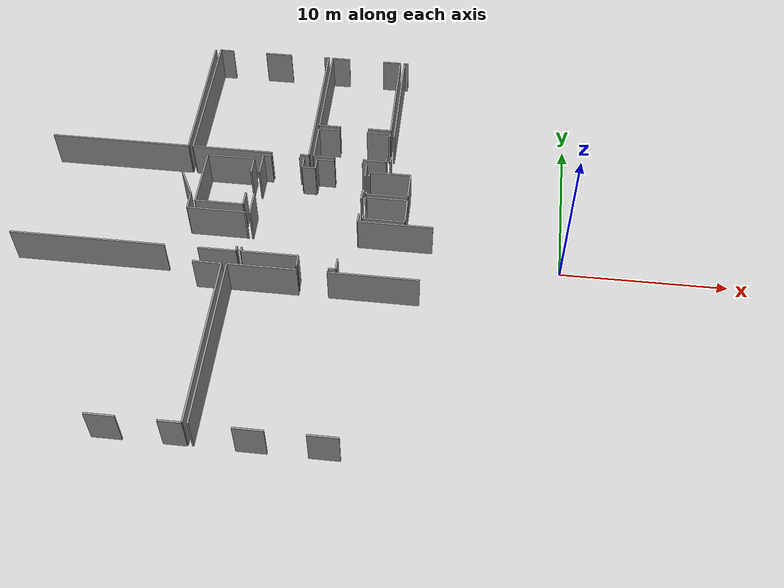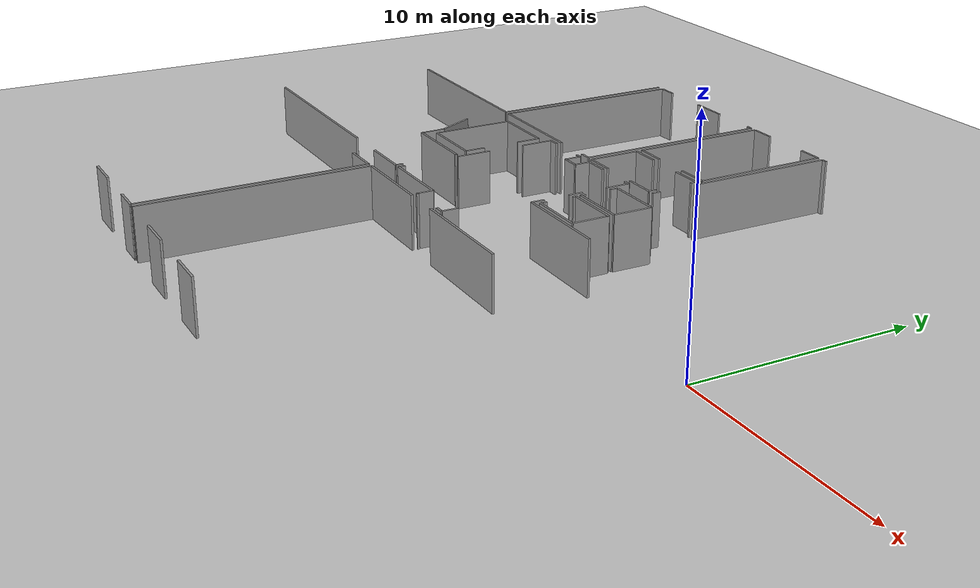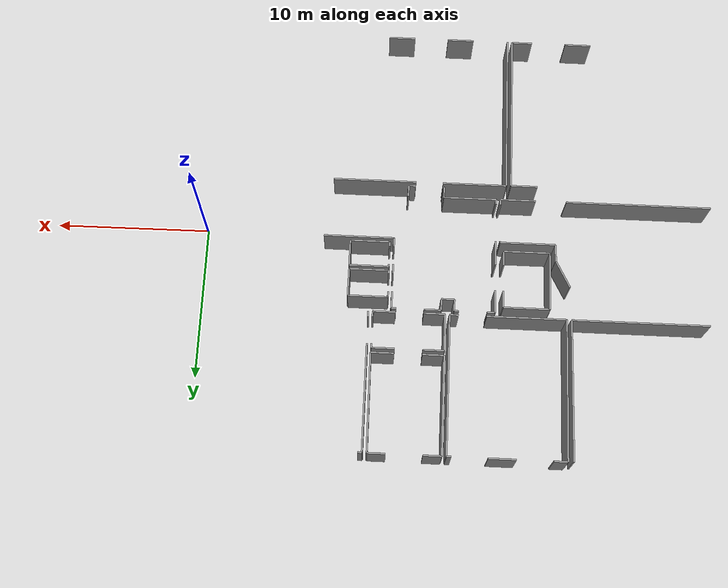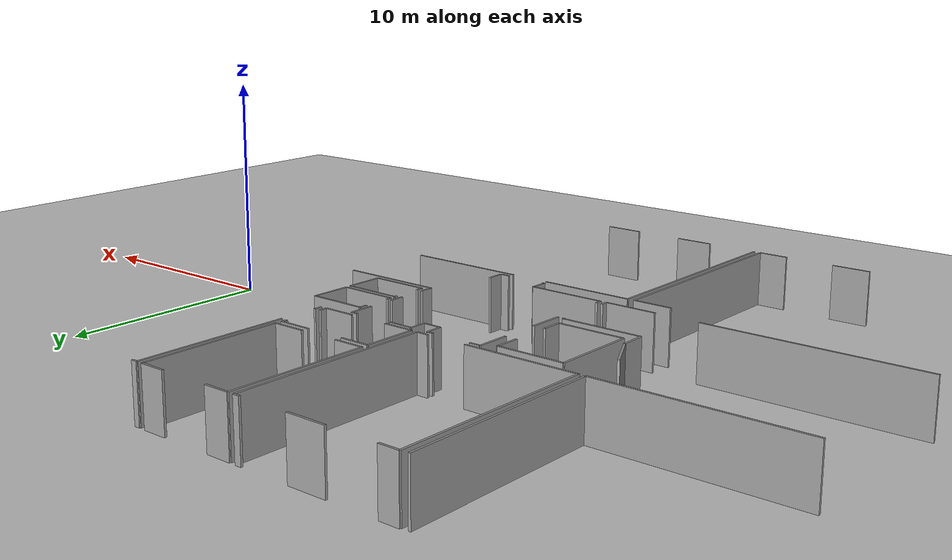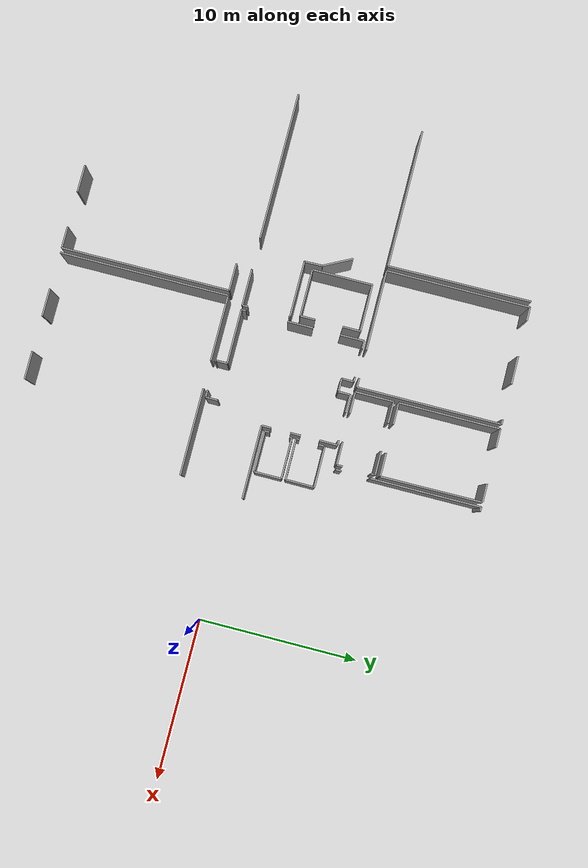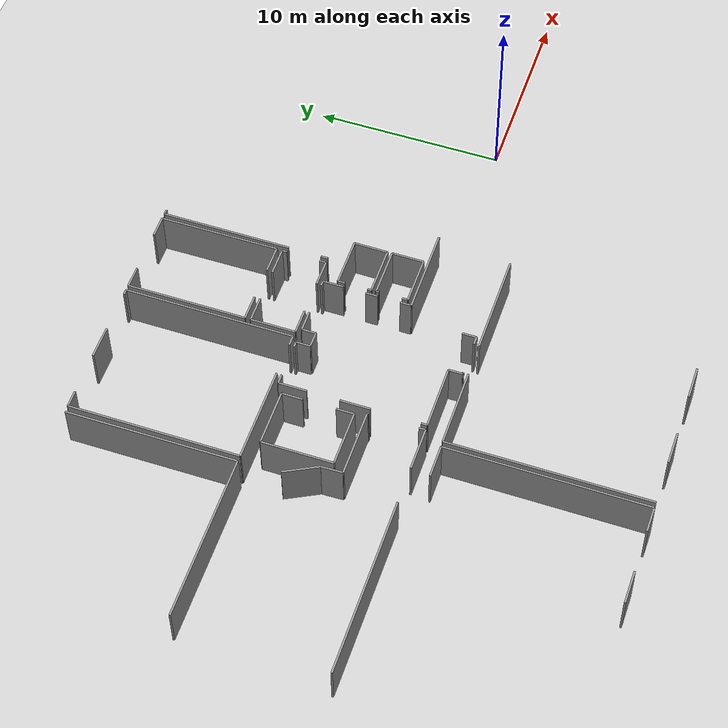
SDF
<sdf version="1.6">
 <world name="default">
  <model name="ground_plane">
   <static>1</static>
   <link name="link">
    <collision name="collision">
     <geometry><plane><normal>0 0 1</normal><size>100 100</size></plane></geometry>
     <surface><friction><ode><mu>100</mu><mu2>50</mu2></ode></friction></surface>
    </collision>
    <visual name="visual">
     <cast_shadows>0</cast_shadows>
     <geometry><plane><normal>0 0 1</normal><size>100 100</size></plane></geometry>
     <material>
      <script><uri>file://media/materials/scripts/gazebo.material</uri><name>Gazebo/Grey</name></script>
     </material>
    </visual>
   </link>
  </model>
  <model name="0510032266_A_40_1_103">
   <static>1</static>
   <link name="Wall_37">
    <collision name="Wall_37_Collision">
     <geometry><box><size>8.75459433381 0.1 2.5</size></box></geometry>
     <pose>4.37729716691 0 1.25 0 0 0</pose>
    </collision>
    <visual name="Wall_37_Visual">
     <pose>4.37729716691 0 1.25 0 0 0</pose>
     <geometry><box><size>8.75459433381 0.1 2.5</size></box></geometry>
     <material>
      <script><uri>file://media/materials/scripts/gazebo.material</uri><name>Gazebo/Grey</name></script>
      <ambient>1 1 1 1</ambient>
     </material>
    </visual>
    <pose>23.7045406936 -9.0210815649 0 0 0 3.14159265359</pose>
   </link>
   <link name="Wall_44">
    <collision name="Wall_44_Collision">
     <geometry><box><size>8.99659842977 0.1 2.5</size></box></geometry>
     <pose>4.49829921489 0 1.25 0 0 0</pose>
    </collision>
    <visual name="Wall_44_Visual">
     <pose>4.49829921489 0 1.25 0 0 0</pose>
     <geometry><box><size>8.99659842977 0.1 2.5</size></box></geometry>
     <material>
      <script><uri>file://media/materials/scripts/gazebo.material</uri><name>Gazebo/Grey</name></script>
      <ambient>1 1 1 1</ambient>
     </material>
    </visual>
    <pose>23.6531222426 -0.0246300728111 0 0 0 -1.56508097434</pose>
   </link>
   <link name="Wall_53">
    <collision name="Wall_53_Collision">
     <geometry><box><size>2.30392748094 0.1 2.5</size></box></geometry>
     <pose>1.15196374047 0 1.25 0 0 0</pose>
    </collision>
    <visual name="Wall_53_Visual">
     <pose>1.15196374047 0 1.25 0 0 0</pose>
     <geometry><box><size>2.30392748094 0.1 2.5</size></box></geometry>
     <material>
      <script><uri>file://media/materials/scripts/gazebo.material</uri><name>Gazebo/Grey</name></script>
      <ambient>1 1 1 1</ambient>
     </material>
    </visual>
    <pose>28.2952561718 -17.0398207337 0 0 0 3.14159265359</pose>
   </link>
   <link name="Wall_54">
    <collision name="Wall_54_Collision">
     <geometry><box><size>9.41427401591 0.1 2.5</size></box></geometry>
     <pose>4.70713700795 0 1.25 0 0 0</pose>
    </collision>
    <visual name="Wall_54_Visual">
     <pose>4.70713700795 0 1.25 0 0 0</pose>
     <geometry><box><size>9.41427401591 0.1 2.5</size></box></geometry>
     <material>
      <script><uri>file://media/materials/scripts/gazebo.material</uri><name>Gazebo/Grey</name></script>
      <ambient>1 1 1 1</ambient>
     </material>
    </visual>
    <pose>23.9917222642 -17.0398207337 0 0 0 3.14159265359</pose>
   </link>
   <link name="Wall_65">
    <collision name="Wall_65_Collision">
     <geometry><box><size>1.92346495425 0.1 2.5</size></box></geometry>
     <pose>0.961732477126 0 1.25 0 0 0</pose>
    </collision>
    <visual name="Wall_65_Visual">
     <pose>0.961732477126 0 1.25 0 0 0</pose>
     <geometry><box><size>1.92346495425 0.1 2.5</size></box></geometry>
     <material>
      <script><uri>file://media/materials/scripts/gazebo.material</uri><name>Gazebo/Grey</name></script>
      <ambient>1 1 1 1</ambient>
     </material>
    </visual>
    <pose>23.8025531483 -11.2031282732 0 0 0 -1.09377642642</pose>
   </link>
   <link name="Wall_66">
    <collision name="Wall_66_Collision">
     <geometry><box><size>1.13322291596 0.1 2.5</size></box></geometry>
     <pose>0.566611457982 0 1.25 0 0 0</pose>
    </collision>
    <visual name="Wall_66_Visual">
     <pose>0.566611457982 0 1.25 0 0 0</pose>
     <geometry><box><size>1.13322291596 0.1 2.5</size></box></geometry>
     <material>
      <script><uri>file://media/materials/scripts/gazebo.material</uri><name>Gazebo/Grey</name></script>
      <ambient>1 1 1 1</ambient>
     </material>
    </visual>
    <pose>24.6856809136 -12.9118713142 0 0 0 -1.5453619383</pose>
   </link>
   <link name="Wall_67">
    <collision name="Wall_67_Collision">
     <geometry><box><size>3.56844049743 0.1 2.5</size></box></geometry>
     <pose>1.78422024871 0 1.25 0 0 0</pose>
    </collision>
    <visual name="Wall_67_Visual">
     <pose>1.78422024871 0 1.25 0 0 0</pose>
     <geometry><box><size>3.56844049743 0.1 2.5</size></box></geometry>
     <material>
      <script><uri>file://media/materials/scripts/gazebo.material</uri><name>Gazebo/Grey</name></script>
      <ambient>1 1 1 1</ambient>
     </material>
    </visual>
    <pose>24.714500638 -14.0447277044 0 0 0 0.0</pose>
   </link>
   <link name="Wall_68">
    <collision name="Wall_68_Collision">
     <geometry><box><size>0.0813808075871 0.1 2.5</size></box></geometry>
     <pose>0.0406904037935 0 1.25 0 0 0</pose>
    </collision>
    <visual name="Wall_68_Visual">
     <pose>0.0406904037935 0 1.25 0 0 0</pose>
     <geometry><box><size>0.0813808075871 0.1 2.5</size></box></geometry>
     <material>
      <script><uri>file://media/materials/scripts/gazebo.material</uri><name>Gazebo/Grey</name></script>
      <ambient>1 1 1 1</ambient>
     </material>
    </visual>
    <pose>28.2829411354 -14.0447277044 0 0 0 -1.57079632679</pose>
   </link>
   <link name="Wall_69">
    <collision name="Wall_69_Collision">
     <geometry><box><size>0.346563403866 0.1 2.5</size></box></geometry>
     <pose>0.173281701933 0 1.25 0 0 0</pose>
    </collision>
    <visual name="Wall_69_Visual">
     <pose>0.173281701933 0 1.25 0 0 0</pose>
     <geometry><box><size>0.346563403866 0.1 2.5</size></box></geometry>
     <material>
      <script><uri>file://media/materials/scripts/gazebo.material</uri><name>Gazebo/Grey</name></script>
      <ambient>1 1 1 1</ambient>
     </material>
    </visual>
    <pose>28.2829411354 -16.6934762047 0 0 0 -1.53525411583</pose>
   </link>
   <link name="Wall_79">
    <collision name="Wall_79_Collision">
     <geometry><box><size>1.34576686493 0.1 2.5</size></box></geometry>
     <pose>0.672883432467 0 1.25 0 0 0</pose>
    </collision>
    <visual name="Wall_79_Visual">
     <pose>0.672883432467 0 1.25 0 0 0</pose>
     <geometry><box><size>1.34576686493 0.1 2.5</size></box></geometry>
     <material>
      <script><uri>file://media/materials/scripts/gazebo.material</uri><name>Gazebo/Grey</name></script>
      <ambient>1 1 1 1</ambient>
     </material>
    </visual>
    <pose>27.6094229072 -28.6654690188 0 0 0 3.14159265359</pose>
   </link>
   <link name="Wall_80">
    <collision name="Wall_80_Collision">
     <geometry><box><size>1.73756276542 0.1 2.5</size></box></geometry>
     <pose>0.868781382712 0 1.25 0 0 0</pose>
    </collision>
    <visual name="Wall_80_Visual">
     <pose>0.868781382712 0 1.25 0 0 0</pose>
     <geometry><box><size>1.73756276542 0.1 2.5</size></box></geometry>
     <material>
      <script><uri>file://media/materials/scripts/gazebo.material</uri><name>Gazebo/Grey</name></script>
      <ambient>1 1 1 1</ambient>
     </material>
    </visual>
    <pose>23.9945153652 -28.6654690188 0 0 0 3.14159265359</pose>
   </link>
   <link name="Wall_84">
    <collision name="Wall_84_Collision">
     <geometry><box><size>1.73261135903 0.1 2.5</size></box></geometry>
     <pose>0.866305679517 0 1.25 0 0 0</pose>
    </collision>
    <visual name="Wall_84_Visual">
     <pose>0.866305679517 0 1.25 0 0 0</pose>
     <geometry><box><size>1.73261135903 0.1 2.5</size></box></geometry>
     <material>
      <script><uri>file://media/materials/scripts/gazebo.material</uri><name>Gazebo/Grey</name></script>
      <ambient>1 1 1 1</ambient>
     </material>
    </visual>
    <pose>25.8817629546 -18.0473684545 0 0 0 0.0</pose>
   </link>
   <link name="Wall_85">
    <collision name="Wall_85_Collision">
     <geometry><box><size>10.6181017188 0.1 2.5</size></box></geometry>
     <pose>5.3090508594 0 1.25 0 0 0</pose>
    </collision>
    <visual name="Wall_85_Visual">
     <pose>5.3090508594 0 1.25 0 0 0</pose>
     <geometry><box><size>10.6181017188 0.1 2.5</size></box></geometry>
     <material>
      <script><uri>file://media/materials/scripts/gazebo.material</uri><name>Gazebo/Grey</name></script>
      <ambient>1 1 1 1</ambient>
     </material>
    </visual>
    <pose>27.6143743136 -18.0473684545 0 0 0 -1.57126264429</pose>
   </link>
   <link name="Wall_86">
    <collision name="Wall_86_Collision">
     <geometry><box><size>0.308891583244 0.1 2.5</size></box></geometry>
     <pose>0.154445791622 0 1.25 0 0 0</pose>
    </collision>
    <visual name="Wall_86_Visual">
     <pose>0.154445791622 0 1.25 0 0 0</pose>
     <geometry><box><size>0.308891583244 0.1 2.5</size></box></geometry>
     <material>
      <script><uri>file://media/materials/scripts/gazebo.material</uri><name>Gazebo/Grey</name></script>
      <ambient>1 1 1 1</ambient>
     </material>
    </visual>
    <pose>28.5682183189 -17.0290292069 0 0 0 1.57079632679</pose>
   </link>
   <link name="Wall_87">
    <collision name="Wall_87_Collision">
     <geometry><box><size>1.59968514134 0.1 2.5</size></box></geometry>
     <pose>0.799842570669 0 1.25 0 0 0</pose>
    </collision>
    <visual name="Wall_87_Visual">
     <pose>0.799842570669 0 1.25 0 0 0</pose>
     <geometry><box><size>1.59968514134 0.1 2.5</size></box></geometry>
     <material>
      <script><uri>file://media/materials/scripts/gazebo.material</uri><name>Gazebo/Grey</name></script>
      <ambient>1 1 1 1</ambient>
     </material>
    </visual>
    <pose>28.5682183189 -14.1159517809 0 0 0 1.57079632679</pose>
   </link>
   <link name="Wall_88">
    <collision name="Wall_88_Collision">
     <geometry><box><size>1.50154572751 0.1 2.5</size></box></geometry>
     <pose>0.750772863754 0 1.25 0 0 0</pose>
    </collision>
    <visual name="Wall_88_Visual">
     <pose>0.750772863754 0 1.25 0 0 0</pose>
     <geometry><box><size>1.50154572751 0.1 2.5</size></box></geometry>
     <material>
      <script><uri>file://media/materials/scripts/gazebo.material</uri><name>Gazebo/Grey</name></script>
      <ambient>1 1 1 1</ambient>
     </material>
    </visual>
    <pose>28.5682183189 -10.7985094997 0 0 0 1.57079632679</pose>
   </link>
   <link name="Wall_89">
    <collision name="Wall_89_Collision">
     <geometry><box><size>0.501742514172 0.1 2.5</size></box></geometry>
     <pose>0.250871257086 0 1.25 0 0 0</pose>
    </collision>
    <visual name="Wall_89_Visual">
     <pose>0.250871257086 0 1.25 0 0 0</pose>
     <geometry><box><size>0.501742514172 0.1 2.5</size></box></geometry>
     <material>
      <script><uri>file://media/materials/scripts/gazebo.material</uri><name>Gazebo/Grey</name></script>
      <ambient>1 1 1 1</ambient>
     </material>
    </visual>
    <pose>28.5682183189 -9.29696377221 0 0 0 0.0</pose>
   </link>
   <link name="Wall_90">
    <collision name="Wall_90_Collision">
     <geometry><box><size>0.292006017863 0.1 2.5</size></box></geometry>
     <pose>0.146003008932 0 1.25 0 0 0</pose>
    </collision>
    <visual name="Wall_90_Visual">
     <pose>0.146003008932 0 1.25 0 0 0</pose>
     <geometry><box><size>0.292006017863 0.1 2.5</size></box></geometry>
     <material>
      <script><uri>file://media/materials/scripts/gazebo.material</uri><name>Gazebo/Grey</name></script>
      <ambient>1 1 1 1</ambient>
     </material>
    </visual>
    <pose>30.8595768452 -9.29696377221 0 0 0 0.0</pose>
   </link>
   <link name="Wall_91">
    <collision name="Wall_91_Collision">
     <geometry><box><size>0.756295586266 0.1 2.5</size></box></geometry>
     <pose>0.378147793133 0 1.25 0 0 0</pose>
    </collision>
    <visual name="Wall_91_Visual">
     <pose>0.378147793133 0 1.25 0 0 0</pose>
     <geometry><box><size>0.756295586266 0.1 2.5</size></box></geometry>
     <material>
      <script><uri>file://media/materials/scripts/gazebo.material</uri><name>Gazebo/Grey</name></script>
      <ambient>1 1 1 1</ambient>
     </material>
    </visual>
    <pose>31.1515828631 -9.29696377221 0 0 0 -1.57079632679</pose>
   </link>
   <link name="Wall_92">
    <collision name="Wall_92_Collision">
     <geometry><box><size>0.825234398309 0.1 2.5</size></box></geometry>
     <pose>0.412617199154 0 1.25 0 0 0</pose>
    </collision>
    <visual name="Wall_92_Visual">
     <pose>0.412617199154 0 1.25 0 0 0</pose>
     <geometry><box><size>0.825234398309 0.1 2.5</size></box></geometry>
     <material>
      <script><uri>file://media/materials/scripts/gazebo.material</uri><name>Gazebo/Grey</name></script>
      <ambient>1 1 1 1</ambient>
     </material>
    </visual>
    <pose>31.1515828631 -10.0532593585 0 0 0 0.0</pose>
   </link>
   <link name="Wall_93">
    <collision name="Wall_93_Collision">
     <geometry><box><size>0.749058915388 0.1 2.5</size></box></geometry>
     <pose>0.374529457694 0 1.25 0 0 0</pose>
    </collision>
    <visual name="Wall_93_Visual">
     <pose>0.374529457694 0 1.25 0 0 0</pose>
     <geometry><box><size>0.749058915388 0.1 2.5</size></box></geometry>
     <material>
      <script><uri>file://media/materials/scripts/gazebo.material</uri><name>Gazebo/Grey</name></script>
      <ambient>1 1 1 1</ambient>
     </material>
    </visual>
    <pose>31.9768172614 -10.0532593585 0 0 0 1.57079632679</pose>
   </link>
   <link name="Wall_94">
    <collision name="Wall_94_Collision">
     <geometry><box><size>1.10454450235 0.1 2.5</size></box></geometry>
     <pose>0.552272251176 0 1.25 0 0 0</pose>
    </collision>
    <visual name="Wall_94_Visual">
     <pose>0.552272251176 0 1.25 0 0 0</pose>
     <geometry><box><size>1.10454450235 0.1 2.5</size></box></geometry>
     <material>
      <script><uri>file://media/materials/scripts/gazebo.material</uri><name>Gazebo/Grey</name></script>
      <ambient>1 1 1 1</ambient>
     </material>
    </visual>
    <pose>31.9768172614 -9.30420044309 0 0 0 0.0</pose>
   </link>
   <link name="Wall_95">
    <collision name="Wall_95_Collision">
     <geometry><box><size>0.297592219944 0.1 2.5</size></box></geometry>
     <pose>0.148796109972 0 1.25 0 0 0</pose>
    </collision>
    <visual name="Wall_95_Visual">
     <pose>0.148796109972 0 1.25 0 0 0</pose>
     <geometry><box><size>0.297592219944 0.1 2.5</size></box></geometry>
     <material>
      <script><uri>file://media/materials/scripts/gazebo.material</uri><name>Gazebo/Grey</name></script>
      <ambient>1 1 1 1</ambient>
     </material>
    </visual>
    <pose>34.8424119697 -9.30420044309 0 0 0 0.0</pose>
   </link>
   <link name="Wall_96">
    <collision name="Wall_96_Collision">
     <geometry><box><size>1.11165421409 0.1 2.5</size></box></geometry>
     <pose>0.555827107046 0 1.25 0 0 0</pose>
    </collision>
    <visual name="Wall_96_Visual">
     <pose>0.555827107046 0 1.25 0 0 0</pose>
     <geometry><box><size>1.11165421409 0.1 2.5</size></box></geometry>
     <material>
      <script><uri>file://media/materials/scripts/gazebo.material</uri><name>Gazebo/Grey</name></script>
      <ambient>1 1 1 1</ambient>
     </material>
    </visual>
    <pose>35.1400041897 -9.30420044309 0 0 0 -1.57079632679</pose>
   </link>
   <link name="Wall_97">
    <collision name="Wall_97_Collision">
     <geometry><box><size>0.640381893088 0.1 2.5</size></box></geometry>
     <pose>0.320190946544 0 1.25 0 0 0</pose>
    </collision>
    <visual name="Wall_97_Visual">
     <pose>0.320190946544 0 1.25 0 0 0</pose>
     <geometry><box><size>0.640381893088 0.1 2.5</size></box></geometry>
     <material>
      <script><uri>file://media/materials/scripts/gazebo.material</uri><name>Gazebo/Grey</name></script>
      <ambient>1 1 1 1</ambient>
     </material>
    </visual>
    <pose>35.1400041897 -11.6043191499 0 0 0 -1.57079632679</pose>
   </link>
   <link name="Wall_98">
    <collision name="Wall_98_Collision">
     <geometry><box><size>0.595184439888 0.1 2.5</size></box></geometry>
     <pose>0.297592219944 0 1.25 0 0 0</pose>
    </collision>
    <visual name="Wall_98_Visual">
     <pose>0.297592219944 0 1.25 0 0 0</pose>
     <geometry><box><size>0.595184439888 0.1 2.5</size></box></geometry>
     <material>
      <script><uri>file://media/materials/scripts/gazebo.material</uri><name>Gazebo/Grey</name></script>
      <ambient>1 1 1 1</ambient>
     </material>
    </visual>
    <pose>35.1400041897 -13.4510667742 0 0 0 -1.57079632679</pose>
   </link>
   <link name="Wall_99">
    <collision name="Wall_99_Collision">
     <geometry><box><size>4.56126095816 0.1 2.5</size></box></geometry>
     <pose>2.28063047908 0 1.25 0 0 0</pose>
    </collision>
    <visual name="Wall_99_Visual">
     <pose>2.28063047908 0 1.25 0 0 0</pose>
     <geometry><box><size>4.56126095816 0.1 2.5</size></box></geometry>
     <material>
      <script><uri>file://media/materials/scripts/gazebo.material</uri><name>Gazebo/Grey</name></script>
      <ambient>1 1 1 1</ambient>
     </material>
    </visual>
    <pose>35.1400041897 -14.046251214 0 0 0 0.0</pose>
   </link>
   <link name="Wall_134">
    <collision name="Wall_134_Collision">
     <geometry><box><size>0.759088687306 0.1 2.5</size></box></geometry>
     <pose>0.379544343653 0 1.25 0 0 0</pose>
    </collision>
    <visual name="Wall_134_Visual">
     <pose>0.379544343653 0 1.25 0 0 0</pose>
     <geometry><box><size>0.759088687306 0.1 2.5</size></box></geometry>
     <material>
      <script><uri>file://media/materials/scripts/gazebo.material</uri><name>Gazebo/Grey</name></script>
      <ambient>1 1 1 1</ambient>
     </material>
    </visual>
    <pose>34.3189594429 -17.0012251557 0 0 0 -1.57079632679</pose>
   </link>
   <link name="Wall_135">
    <collision name="Wall_135_Collision">
     <geometry><box><size>0.441817800941 0.1 2.5</size></box></geometry>
     <pose>0.22090890047 0 1.25 0 0 0</pose>
    </collision>
    <visual name="Wall_135_Visual">
     <pose>0.22090890047 0 1.25 0 0 0</pose>
     <geometry><box><size>0.441817800941 0.1 2.5</size></box></geometry>
     <material>
      <script><uri>file://media/materials/scripts/gazebo.material</uri><name>Gazebo/Grey</name></script>
      <ambient>1 1 1 1</ambient>
     </material>
    </visual>
    <pose>34.3189594429 -17.760313843 0 0 0 3.14159265359</pose>
   </link>
   <link name="Wall_136">
    <collision name="Wall_136_Collision">
     <geometry><box><size>0.0834121537983 0.1 2.5</size></box></geometry>
     <pose>0.0417060768992 0 1.25 0 0 0</pose>
    </collision>
    <visual name="Wall_136_Visual">
     <pose>0.0417060768992 0 1.25 0 0 0</pose>
     <geometry><box><size>0.0834121537983 0.1 2.5</size></box></geometry>
     <material>
      <script><uri>file://media/materials/scripts/gazebo.material</uri><name>Gazebo/Grey</name></script>
      <ambient>1 1 1 1</ambient>
     </material>
    </visual>
    <pose>32.0743218795 -17.760313843 0 0 0 3.14159265359</pose>
   </link>
   <link name="Wall_137">
    <collision name="Wall_137_Collision">
     <geometry><box><size>0.739663939161 0.1 2.5</size></box></geometry>
     <pose>0.369831969581 0 1.25 0 0 0</pose>
    </collision>
    <visual name="Wall_137_Visual">
     <pose>0.369831969581 0 1.25 0 0 0</pose>
     <geometry><box><size>0.739663939161 0.1 2.5</size></box></geometry>
     <material>
      <script><uri>file://media/materials/scripts/gazebo.material</uri><name>Gazebo/Grey</name></script>
      <ambient>1 1 1 1</ambient>
     </material>
    </visual>
    <pose>31.9909097257 -17.760313843 0 0 0 1.57079632679</pose>
   </link>
   <link name="Wall_138">
    <collision name="Wall_138_Collision">
     <geometry><box><size>3.4227016637 0.1 2.5</size></box></geometry>
     <pose>1.71135083185 0 1.25 0 0 0</pose>
    </collision>
    <visual name="Wall_138_Visual">
     <pose>1.71135083185 0 1.25 0 0 0</pose>
     <geometry><box><size>3.4227016637 0.1 2.5</size></box></geometry>
     <material>
      <script><uri>file://media/materials/scripts/gazebo.material</uri><name>Gazebo/Grey</name></script>
      <ambient>1 1 1 1</ambient>
     </material>
    </visual>
    <pose>31.9909097257 -17.0206499038 0 0 0 -3.13914449646</pose>
   </link>
   <link name="Wall_139">
    <collision name="Wall_139_Collision">
     <geometry><box><size>2.96640026407 0.1 2.5</size></box></geometry>
     <pose>1.48320013204 0 1.25 0 0 0</pose>
    </collision>
    <visual name="Wall_139_Visual">
     <pose>1.48320013204 0 1.25 0 0 0</pose>
     <geometry><box><size>2.96640026407 0.1 2.5</size></box></geometry>
     <material>
      <script><uri>file://media/materials/scripts/gazebo.material</uri><name>Gazebo/Grey</name></script>
      <ambient>1 1 1 1</ambient>
     </material>
    </visual>
    <pose>28.0456545061 -13.4494163054 0 0 0 3.14159265359</pose>
   </link>
   <link name="Wall_140">
    <collision name="Wall_140_Collision">
     <geometry><box><size>3.7823666453 0.1 2.5</size></box></geometry>
     <pose>1.89118332265 0 1.25 0 0 0</pose>
    </collision>
    <visual name="Wall_140_Visual">
     <pose>1.89118332265 0 1.25 0 0 0</pose>
     <geometry><box><size>3.7823666453 0.1 2.5</size></box></geometry>
     <material>
      <script><uri>file://media/materials/scripts/gazebo.material</uri><name>Gazebo/Grey</name></script>
      <ambient>1 1 1 1</ambient>
     </material>
    </visual>
    <pose>25.079254242 -13.4494163054 0 0 0 1.57079632679</pose>
   </link>
   <link name="Wall_141">
    <collision name="Wall_141_Collision">
     <geometry><box><size>2.96640026407 0.1 2.5</size></box></geometry>
     <pose>1.48320013204 0 1.25 0 0 0</pose>
    </collision>
    <visual name="Wall_141_Visual">
     <pose>1.48320013204 0 1.25 0 0 0</pose>
     <geometry><box><size>2.96640026407 0.1 2.5</size></box></geometry>
     <material>
      <script><uri>file://media/materials/scripts/gazebo.material</uri><name>Gazebo/Grey</name></script>
      <ambient>1 1 1 1</ambient>
     </material>
    </visual>
    <pose>25.079254242 -9.66704966007 0 0 0 0.0</pose>
   </link>
   <link name="Wall_142">
    <collision name="Wall_142_Collision">
     <geometry><box><size>1.1136855603 0.1 2.5</size></box></geometry>
     <pose>0.556842780151 0 1.25 0 0 0</pose>
    </collision>
    <visual name="Wall_142_Visual">
     <pose>0.556842780151 0 1.25 0 0 0</pose>
     <geometry><box><size>1.1136855603 0.1 2.5</size></box></geometry>
     <material>
      <script><uri>file://media/materials/scripts/gazebo.material</uri><name>Gazebo/Grey</name></script>
      <ambient>1 1 1 1</ambient>
     </material>
    </visual>
    <pose>28.0456545061 -9.66704966007 0 0 0 -1.57079632679</pose>
   </link>
   <link name="Wall_143">
    <collision name="Wall_143_Collision">
     <geometry><box><size>0.934800134577 0.1 2.5</size></box></geometry>
     <pose>0.467400067288 0 1.25 0 0 0</pose>
    </collision>
    <visual name="Wall_143_Visual">
     <pose>0.467400067288 0 1.25 0 0 0</pose>
     <geometry><box><size>0.934800134577 0.1 2.5</size></box></geometry>
     <material>
      <script><uri>file://media/materials/scripts/gazebo.material</uri><name>Gazebo/Grey</name></script>
      <ambient>1 1 1 1</ambient>
     </material>
    </visual>
    <pose>28.0456545061 -12.5146161708 0 0 0 -1.57079632679</pose>
   </link>
   <link name="Wall_144">
    <collision name="Wall_144_Collision">
     <geometry><box><size>0.563063777923 0.1 2.5</size></box></geometry>
     <pose>0.281531888962 0 1.25 0 0 0</pose>
    </collision>
    <visual name="Wall_144_Visual">
     <pose>0.281531888962 0 1.25 0 0 0</pose>
     <geometry><box><size>0.563063777923 0.1 2.5</size></box></geometry>
     <material>
      <script><uri>file://media/materials/scripts/gazebo.material</uri><name>Gazebo/Grey</name></script>
      <ambient>1 1 1 1</ambient>
     </material>
    </visual>
    <pose>31.4325434359 -9.03212700992 0 0 0 3.14159265359</pose>
   </link>
   <link name="Wall_145">
    <collision name="Wall_145_Collision">
     <geometry><box><size>5.07836552805 0.1 2.5</size></box></geometry>
     <pose>2.53918276403 0 1.25 0 0 0</pose>
    </collision>
    <visual name="Wall_145_Visual">
     <pose>2.53918276403 0 1.25 0 0 0</pose>
     <geometry><box><size>5.07836552805 0.1 2.5</size></box></geometry>
     <material>
      <script><uri>file://media/materials/scripts/gazebo.material</uri><name>Gazebo/Grey</name></script>
      <ambient>1 1 1 1</ambient>
     </material>
    </visual>
    <pose>29.0825297878 -9.03212700992 0 0 0 3.14159265359</pose>
   </link>
   <link name="Wall_146">
    <collision name="Wall_146_Collision">
     <geometry><box><size>9.02146244231 0.1 2.5</size></box></geometry>
     <pose>4.51073122116 0 1.25 0 0 0</pose>
    </collision>
    <visual name="Wall_146_Visual">
     <pose>4.51073122116 0 1.25 0 0 0</pose>
     <geometry><box><size>9.02146244231 0.1 2.5</size></box></geometry>
     <material>
      <script><uri>file://media/materials/scripts/gazebo.material</uri><name>Gazebo/Grey</name></script>
      <ambient>1 1 1 1</ambient>
     </material>
    </visual>
    <pose>24.0041642597 -9.03212700992 0 0 0 1.57079632679</pose>
   </link>
   <link name="Wall_147">
    <collision name="Wall_147_Collision">
     <geometry><box><size>0.878176358939 0.1 2.5</size></box></geometry>
     <pose>0.439088179469 0 1.25 0 0 0</pose>
    </collision>
    <visual name="Wall_147_Visual">
     <pose>0.439088179469 0 1.25 0 0 0</pose>
     <geometry><box><size>0.878176358939 0.1 2.5</size></box></geometry>
     <material>
      <script><uri>file://media/materials/scripts/gazebo.material</uri><name>Gazebo/Grey</name></script>
      <ambient>1 1 1 1</ambient>
     </material>
    </visual>
    <pose>24.0041642597 -0.0106645676089 0 0 0 0.0</pose>
   </link>
   <link name="Wall_148">
    <collision name="Wall_148_Collision">
     <geometry><box><size>1.7421332944 0.1 2.5</size></box></geometry>
     <pose>0.8710666472 0 1.25 0 0 0</pose>
    </collision>
    <visual name="Wall_148_Visual">
     <pose>0.8710666472 0 1.25 0 0 0</pose>
     <geometry><box><size>1.7421332944 0.1 2.5</size></box></geometry>
     <material>
      <script><uri>file://media/materials/scripts/gazebo.material</uri><name>Gazebo/Grey</name></script>
      <ambient>1 1 1 1</ambient>
     </material>
    </visual>
    <pose>27.1420863195 -0.0106645676089 0 0 0 0.0</pose>
   </link>
   <link name="Wall_149">
    <collision name="Wall_149_Collision">
     <geometry><box><size>0.290990344758 0.1 2.5</size></box></geometry>
     <pose>0.145495172379 0 1.25 0 0 0</pose>
    </collision>
    <visual name="Wall_149_Visual">
     <pose>0.145495172379 0 1.25 0 0 0</pose>
     <geometry><box><size>0.290990344758 0.1 2.5</size></box></geometry>
     <material>
      <script><uri>file://media/materials/scripts/gazebo.material</uri><name>Gazebo/Grey</name></script>
      <ambient>1 1 1 1</ambient>
     </material>
    </visual>
    <pose>31.1343164203 -0.0106645676089 0 0 0 0.0</pose>
   </link>
   <link name="Wall_150">
    <collision name="Wall_150_Collision">
     <geometry><box><size>9.0214653448 0.1 2.5</size></box></geometry>
     <pose>4.5107326724 0 1.25 0 0 0</pose>
    </collision>
    <visual name="Wall_150_Visual">
     <pose>4.5107326724 0 1.25 0 0 0</pose>
     <geometry><box><size>9.0214653448 0.1 2.5</size></box></geometry>
     <material>
      <script><uri>file://media/materials/scripts/gazebo.material</uri><name>Gazebo/Grey</name></script>
      <ambient>1 1 1 1</ambient>
     </material>
    </visual>
    <pose>31.425306765 -0.0106645676089 0 0 0 -1.56999416535</pose>
   </link>
   <link name="Wall_151">
    <collision name="Wall_151_Collision">
     <geometry><box><size>1.43527305737 0.1 2.5</size></box></geometry>
     <pose>0.717636528683 0 1.25 0 0 0</pose>
    </collision>
    <visual name="Wall_151_Visual">
     <pose>0.717636528683 0 1.25 0 0 0</pose>
     <geometry><box><size>1.43527305737 0.1 2.5</size></box></geometry>
     <material>
      <script><uri>file://media/materials/scripts/gazebo.material</uri><name>Gazebo/Grey</name></script>
      <ambient>1 1 1 1</ambient>
     </material>
    </visual>
    <pose>36.3122179127 -9.05409094083 0 0 0 3.14159265359</pose>
   </link>
   <link name="Wall_152">
    <collision name="Wall_152_Collision">
     <geometry><box><size>1.36011324755 0.1 2.5</size></box></geometry>
     <pose>0.680056623776 0 1.25 0 0 0</pose>
    </collision>
    <visual name="Wall_152_Visual">
     <pose>0.680056623776 0 1.25 0 0 0</pose>
     <geometry><box><size>1.36011324755 0.1 2.5</size></box></geometry>
     <material>
      <script><uri>file://media/materials/scripts/gazebo.material</uri><name>Gazebo/Grey</name></script>
      <ambient>1 1 1 1</ambient>
     </material>
    </visual>
    <pose>33.0826313551 -9.05409094083 0 0 0 3.14159265359</pose>
   </link>
   <link name="Wall_153">
    <collision name="Wall_153_Collision">
     <geometry><box><size>2.39559197872 0.1 2.5</size></box></geometry>
     <pose>1.19779598936 0 1.25 0 0 0</pose>
    </collision>
    <visual name="Wall_153_Visual">
     <pose>1.19779598936 0 1.25 0 0 0</pose>
     <geometry><box><size>2.39559197872 0.1 2.5</size></box></geometry>
     <material>
      <script><uri>file://media/materials/scripts/gazebo.material</uri><name>Gazebo/Grey</name></script>
      <ambient>1 1 1 1</ambient>
     </material>
    </visual>
    <pose>31.7225181075 -9.05409094083 0 0 0 1.57079632679</pose>
   </link>
   <link name="Wall_154">
    <collision name="Wall_154_Collision">
     <geometry><box><size>1.35503488202 0.1 2.5</size></box></geometry>
     <pose>0.677517441012 0 1.25 0 0 0</pose>
    </collision>
    <visual name="Wall_154_Visual">
     <pose>0.677517441012 0 1.25 0 0 0</pose>
     <geometry><box><size>1.35503488202 0.1 2.5</size></box></geometry>
     <material>
      <script><uri>file://media/materials/scripts/gazebo.material</uri><name>Gazebo/Grey</name></script>
      <ambient>1 1 1 1</ambient>
     </material>
    </visual>
    <pose>31.7225181075 -6.65849896211 0 0 0 0.0</pose>
   </link>
   <link name="Wall_155">
    <collision name="Wall_155_Collision">
     <geometry><box><size>1.47755045039 0.1 2.5</size></box></geometry>
     <pose>0.738775225194 0 1.25 0 0 0</pose>
    </collision>
    <visual name="Wall_155_Visual">
     <pose>0.738775225194 0 1.25 0 0 0</pose>
     <geometry><box><size>1.47755045039 0.1 2.5</size></box></geometry>
     <material>
      <script><uri>file://media/materials/scripts/gazebo.material</uri><name>Gazebo/Grey</name></script>
      <ambient>1 1 1 1</ambient>
     </material>
    </visual>
    <pose>34.8374605633 -6.65849896211 0 0 0 0.0</pose>
   </link>
   <link name="Wall_156">
    <collision name="Wall_156_Collision">
     <geometry><box><size>0.261408865557 0.1 2.5</size></box></geometry>
     <pose>0.130704432778 0 1.25 0 0 0</pose>
    </collision>
    <visual name="Wall_156_Visual">
     <pose>0.130704432778 0 1.25 0 0 0</pose>
     <geometry><box><size>0.261408865557 0.1 2.5</size></box></geometry>
     <material>
      <script><uri>file://media/materials/scripts/gazebo.material</uri><name>Gazebo/Grey</name></script>
      <ambient>1 1 1 1</ambient>
     </material>
    </visual>
    <pose>36.3150110137 -6.65849896211 0 0 0 -1.57079632679</pose>
   </link>
   <link name="Wall_157">
    <collision name="Wall_157_Collision">
     <geometry><box><size>0.359305217522 0.1 2.5</size></box></geometry>
     <pose>0.179652608761 0 1.25 0 0 0</pose>
    </collision>
    <visual name="Wall_157_Visual">
     <pose>0.179652608761 0 1.25 0 0 0</pose>
     <geometry><box><size>0.359305217522 0.1 2.5</size></box></geometry>
     <material>
      <script><uri>file://media/materials/scripts/gazebo.material</uri><name>Gazebo/Grey</name></script>
      <ambient>1 1 1 1</ambient>
     </material>
    </visual>
    <pose>36.3150110137 -8.69479657972 0 0 0 -1.57857002179</pose>
   </link>
   <link name="Wall_158">
    <collision name="Wall_158_Collision">
     <geometry><box><size>2.55187867785 0.1 2.5</size></box></geometry>
     <pose>1.27593933892 0 1.25 0 0 0</pose>
    </collision>
    <visual name="Wall_158_Visual">
     <pose>1.27593933892 0 1.25 0 0 0</pose>
     <geometry><box><size>2.55187867785 0.1 2.5</size></box></geometry>
     <material>
      <script><uri>file://media/materials/scripts/gazebo.material</uri><name>Gazebo/Grey</name></script>
      <ambient>1 1 1 1</ambient>
     </material>
    </visual>
    <pose>37.9460550622 -11.8252280504 0 0 0 3.14159265359</pose>
   </link>
   <link name="Wall_159">
    <collision name="Wall_159_Collision">
     <geometry><box><size>0.204912049057 0.1 2.5</size></box></geometry>
     <pose>0.102456024529 0 1.25 0 0 0</pose>
    </collision>
    <visual name="Wall_159_Visual">
     <pose>0.102456024529 0 1.25 0 0 0</pose>
     <geometry><box><size>0.204912049057 0.1 2.5</size></box></geometry>
     <material>
      <script><uri>file://media/materials/scripts/gazebo.material</uri><name>Gazebo/Grey</name></script>
      <ambient>1 1 1 1</ambient>
     </material>
    </visual>
    <pose>35.3941763843 -11.8252280504 0 0 0 1.57079632679</pose>
   </link>
   <link name="Wall_160">
    <collision name="Wall_160_Collision">
     <geometry><box><size>0.366150154573 0.1 2.5</size></box></geometry>
     <pose>0.183075077286 0 1.25 0 0 0</pose>
    </collision>
    <visual name="Wall_160_Visual">
     <pose>0.183075077286 0 1.25 0 0 0</pose>
     <geometry><box><size>0.366150154573 0.1 2.5</size></box></geometry>
     <material>
      <script><uri>file://media/materials/scripts/gazebo.material</uri><name>Gazebo/Grey</name></script>
      <ambient>1 1 1 1</ambient>
     </material>
    </visual>
    <pose>35.3941763843 -10.3941446445 0 0 0 1.57079632679</pose>
   </link>
   <link name="Wall_161">
    <collision name="Wall_161_Collision">
     <geometry><box><size>2.56685985616 0.1 2.5</size></box></geometry>
     <pose>1.28342992808 0 1.25 0 0 0</pose>
    </collision>
    <visual name="Wall_161_Visual">
     <pose>1.28342992808 0 1.25 0 0 0</pose>
     <geometry><box><size>2.56685985616 0.1 2.5</size></box></geometry>
     <material>
      <script><uri>file://media/materials/scripts/gazebo.material</uri><name>Gazebo/Grey</name></script>
      <ambient>1 1 1 1</ambient>
     </material>
    </visual>
    <pose>35.3941763843 -10.02799449 0 0 0 0.0</pose>
   </link>
   <link name="Wall_162">
    <collision name="Wall_162_Collision">
     <geometry><box><size>1.79729599851 0.1 2.5</size></box></geometry>
     <pose>0.898647999254 0 1.25 0 0 0</pose>
    </collision>
    <visual name="Wall_162_Visual">
     <pose>0.898647999254 0 1.25 0 0 0</pose>
     <geometry><box><size>1.79729599851 0.1 2.5</size></box></geometry>
     <material>
      <script><uri>file://media/materials/scripts/gazebo.material</uri><name>Gazebo/Grey</name></script>
      <ambient>1 1 1 1</ambient>
     </material>
    </visual>
    <pose>37.9610362405 -10.02799449 0 0 0 -1.57913182179</pose>
   </link>
   <link name="Wall_163">
    <collision name="Wall_163_Collision">
     <geometry><box><size>2.54870469939 0.1 2.5</size></box></geometry>
     <pose>1.2743523497 0 1.25 0 0 0</pose>
    </collision>
    <visual name="Wall_163_Visual">
     <pose>1.2743523497 0 1.25 0 0 0</pose>
     <geometry><box><size>2.54870469939 0.1 2.5</size></box></geometry>
     <material>
      <script><uri>file://media/materials/scripts/gazebo.material</uri><name>Gazebo/Grey</name></script>
      <ambient>1 1 1 1</ambient>
     </material>
    </visual>
    <pose>37.9619249545 -13.7729081895 0 0 0 3.14159265359</pose>
   </link>
   <link name="Wall_164">
    <collision name="Wall_164_Collision">
     <geometry><box><size>0.305463686512 0.1 2.5</size></box></geometry>
     <pose>0.152731843256 0 1.25 0 0 0</pose>
    </collision>
    <visual name="Wall_164_Visual">
     <pose>0.152731843256 0 1.25 0 0 0</pose>
     <geometry><box><size>0.305463686512 0.1 2.5</size></box></geometry>
     <material>
      <script><uri>file://media/materials/scripts/gazebo.material</uri><name>Gazebo/Grey</name></script>
      <ambient>1 1 1 1</ambient>
     </material>
    </visual>
    <pose>35.4132202551 -13.7729081895 0 0 0 1.57079632679</pose>
   </link>
   <link name="Wall_165">
    <collision name="Wall_165_Collision">
     <geometry><box><size>0.145114294964 0.1 2.5</size></box></geometry>
     <pose>0.0725571474821 0 1.25 0 0 0</pose>
    </collision>
    <visual name="Wall_165_Visual">
     <pose>0.0725571474821 0 1.25 0 0 0</pose>
     <geometry><box><size>0.145114294964 0.1 2.5</size></box></geometry>
     <material>
      <script><uri>file://media/materials/scripts/gazebo.material</uri><name>Gazebo/Grey</name></script>
      <ambient>1 1 1 1</ambient>
     </material>
    </visual>
    <pose>35.4132202551 -12.2242606217 0 0 0 1.57079632679</pose>
   </link>
   <link name="Wall_166">
    <collision name="Wall_166_Collision">
     <geometry><box><size>2.54591159835 0.1 2.5</size></box></geometry>
     <pose>1.27295579918 0 1.25 0 0 0</pose>
    </collision>
    <visual name="Wall_166_Visual">
     <pose>1.27295579918 0 1.25 0 0 0</pose>
     <geometry><box><size>2.54591159835 0.1 2.5</size></box></geometry>
     <material>
      <script><uri>file://media/materials/scripts/gazebo.material</uri><name>Gazebo/Grey</name></script>
      <ambient>1 1 1 1</ambient>
     </material>
    </visual>
    <pose>35.4132202551 -12.0791463268 0 0 0 0.0</pose>
   </link>
   <link name="Wall_167">
    <collision name="Wall_167_Collision">
     <geometry><box><size>1.69376416573 0.1 2.5</size></box></geometry>
     <pose>0.846882082864 0 1.25 0 0 0</pose>
    </collision>
    <visual name="Wall_167_Visual">
     <pose>0.846882082864 0 1.25 0 0 0</pose>
     <geometry><box><size>1.69376416573 0.1 2.5</size></box></geometry>
     <material>
      <script><uri>file://media/materials/scripts/gazebo.material</uri><name>Gazebo/Grey</name></script>
      <ambient>1 1 1 1</ambient>
     </material>
    </visual>
    <pose>37.9591318534 -12.0791463268 0 0 0 -1.56914727649</pose>
   </link>
   <link name="Wall_169">
    <collision name="Wall_169_Collision">
     <geometry><box><size>1.74848125131 0.1 2.5</size></box></geometry>
     <pose>0.874240625655 0 1.25 0 0 0</pose>
    </collision>
    <visual name="Wall_169_Visual">
     <pose>0.874240625655 0 1.25 0 0 0</pose>
     <geometry><box><size>1.74848125131 0.1 2.5</size></box></geometry>
     <material>
      <script><uri>file://media/materials/scripts/gazebo.material</uri><name>Gazebo/Grey</name></script>
      <ambient>1 1 1 1</ambient>
     </material>
    </visual>
    <pose>35.9979940456 -28.6845128895 0 0 0 3.14159265359</pose>
   </link>
   <link name="Wall_170">
    <collision name="Wall_170_Collision">
     <geometry><box><size>1.7421332944 0.1 2.5</size></box></geometry>
     <pose>0.8710666472 0 1.25 0 0 0</pose>
    </collision>
    <visual name="Wall_170_Visual">
     <pose>0.8710666472 0 1.25 0 0 0</pose>
     <geometry><box><size>1.7421332944 0.1 2.5</size></box></geometry>
     <material>
      <script><uri>file://media/materials/scripts/gazebo.material</uri><name>Gazebo/Grey</name></script>
      <ambient>1 1 1 1</ambient>
     </material>
    </visual>
    <pose>32.0023360481 -28.6845128895 0 0 0 3.14159265359</pose>
   </link>
   <link name="Wall_171">
    <collision name="Wall_171_Collision">
     <geometry><box><size>10.6537760822 0.1 2.5</size></box></geometry>
     <pose>5.32688804108 0 1.25 0 0 0</pose>
    </collision>
    <visual name="Wall_171_Visual">
     <pose>5.32688804108 0 1.25 0 0 0</pose>
     <geometry><box><size>10.6537760822 0.1 2.5</size></box></geometry>
     <material>
      <script><uri>file://media/materials/scripts/gazebo.material</uri><name>Gazebo/Grey</name></script>
      <ambient>1 1 1 1</ambient>
     </material>
    </visual>
    <pose>27.9184414496 -28.6845128895 0 0 0 1.57079632679</pose>
   </link>
   <link name="Wall_172">
    <collision name="Wall_172_Collision">
     <geometry><box><size>4.15588042988 0.1 2.5</size></box></geometry>
     <pose>2.07794021494 0 1.25 0 0 0</pose>
    </collision>
    <visual name="Wall_172_Visual">
     <pose>2.07794021494 0 1.25 0 0 0</pose>
     <geometry><box><size>4.15588042988 0.1 2.5</size></box></geometry>
     <material>
      <script><uri>file://media/materials/scripts/gazebo.material</uri><name>Gazebo/Grey</name></script>
      <ambient>1 1 1 1</ambient>
     </material>
    </visual>
    <pose>27.9184414496 -18.0307368074 0 0 0 0.0</pose>
   </link>
   <link name="Wall_173">
    <collision name="Wall_173_Collision">
     <geometry><box><size>5.42052040551 0.1 2.5</size></box></geometry>
     <pose>2.71026020275 0 1.25 0 0 0</pose>
    </collision>
    <visual name="Wall_173_Visual">
     <pose>2.71026020275 0 1.25 0 0 0</pose>
     <geometry><box><size>5.42052040551 0.1 2.5</size></box></geometry>
     <material>
      <script><uri>file://media/materials/scripts/gazebo.material</uri><name>Gazebo/Grey</name></script>
      <ambient>1 1 1 1</ambient>
     </material>
    </visual>
    <pose>33.8393078188 -18.0307368074 0 0 0 0.0</pose>
   </link>
   <link name="Wall_194">
    <collision name="Wall_194_Collision">
     <geometry><box><size>1.47755045039 0.1 2.5</size></box></geometry>
     <pose>0.738775225194 0 1.25 0 0 0</pose>
    </collision>
    <visual name="Wall_194_Visual">
     <pose>0.738775225194 0 1.25 0 0 0</pose>
     <geometry><box><size>1.47755045039 0.1 2.5</size></box></geometry>
     <material>
      <script><uri>file://media/materials/scripts/gazebo.material</uri><name>Gazebo/Grey</name></script>
      <ambient>1 1 1 1</ambient>
     </material>
    </visual>
    <pose>36.3400219639 -6.35214656163 0 0 0 3.14159265359</pose>
   </link>
   <link name="Wall_195">
    <collision name="Wall_195_Collision">
     <geometry><box><size>1.36900038723 0.1 2.5</size></box></geometry>
     <pose>0.684500193613 0 1.25 0 0 0</pose>
    </collision>
    <visual name="Wall_195_Visual">
     <pose>0.684500193613 0 1.25 0 0 0</pose>
     <geometry><box><size>1.36900038723 0.1 2.5</size></box></geometry>
     <material>
      <script><uri>file://media/materials/scripts/gazebo.material</uri><name>Gazebo/Grey</name></script>
      <ambient>1 1 1 1</ambient>
     </material>
    </visual>
    <pose>33.084408783 -6.35214656163 0 0 0 3.14159265359</pose>
   </link>
   <link name="Wall_196">
    <collision name="Wall_196_Collision">
     <geometry><box><size>6.33729234246 0.1 2.5</size></box></geometry>
     <pose>3.16864617123 0 1.25 0 0 0</pose>
    </collision>
    <visual name="Wall_196_Visual">
     <pose>3.16864617123 0 1.25 0 0 0</pose>
     <geometry><box><size>6.33729234246 0.1 2.5</size></box></geometry>
     <material>
      <script><uri>file://media/materials/scripts/gazebo.material</uri><name>Gazebo/Grey</name></script>
      <ambient>1 1 1 1</ambient>
     </material>
    </visual>
    <pose>31.7154083958 -6.35214656163 0 0 0 1.57079632679</pose>
   </link>
   <link name="Wall_197">
    <collision name="Wall_197_Collision">
     <geometry><box><size>1.15520119849 0.1 2.5</size></box></geometry>
     <pose>0.577600599247 0 1.25 0 0 0</pose>
    </collision>
    <visual name="Wall_197_Visual">
     <pose>0.577600599247 0 1.25 0 0 0</pose>
     <geometry><box><size>1.15520119849 0.1 2.5</size></box></geometry>
     <material>
      <script><uri>file://media/materials/scripts/gazebo.material</uri><name>Gazebo/Grey</name></script>
      <ambient>1 1 1 1</ambient>
     </material>
    </visual>
    <pose>31.7154083958 -0.0148542191696 0 0 0 0.0</pose>
   </link>
   <link name="Wall_198">
    <collision name="Wall_198_Collision">
     <geometry><box><size>1.14694885451 0.1 2.5</size></box></geometry>
     <pose>0.573474427256 0 1.25 0 0 0</pose>
    </collision>
    <visual name="Wall_198_Visual">
     <pose>0.573474427256 0 1.25 0 0 0</pose>
     <geometry><box><size>1.14694885451 0.1 2.5</size></box></geometry>
     <material>
      <script><uri>file://media/materials/scripts/gazebo.material</uri><name>Gazebo/Grey</name></script>
      <ambient>1 1 1 1</ambient>
     </material>
    </visual>
    <pose>35.1499070024 -0.0148542191696 0 0 0 0.0</pose>
   </link>
   <link name="Wall_199">
    <collision name="Wall_199_Collision">
     <geometry><box><size>6.3374393525 0.1 2.5</size></box></geometry>
     <pose>3.16871967625 0 1.25 0 0 0</pose>
    </collision>
    <visual name="Wall_199_Visual">
     <pose>3.16871967625 0 1.25 0 0 0</pose>
     <geometry><box><size>6.3374393525 0.1 2.5</size></box></geometry>
     <material>
      <script><uri>file://media/materials/scripts/gazebo.material</uri><name>Gazebo/Grey</name></script>
      <ambient>1 1 1 1</ambient>
     </material>
    </visual>
    <pose>36.2968558569 -0.0148542191696 0 0 0 -1.56398498891</pose>
   </link>
   <link name="Wall_201">
    <collision name="Wall_201_Collision">
     <geometry><box><size>0.368181500784 0.1 2.5</size></box></geometry>
     <pose>0.184090750392 0 1.25 0 0 0</pose>
    </collision>
    <visual name="Wall_201_Visual">
     <pose>0.184090750392 0 1.25 0 0 0</pose>
     <geometry><box><size>0.368181500784 0.1 2.5</size></box></geometry>
     <material>
      <script><uri>file://media/materials/scripts/gazebo.material</uri><name>Gazebo/Grey</name></script>
      <ambient>1 1 1 1</ambient>
     </material>
    </visual>
    <pose>36.5981298919 -9.05028216668 0 0 0 1.57079632679</pose>
   </link>
   <link name="Wall_202">
    <collision name="Wall_202_Collision">
     <geometry><box><size>6.88981851191 0.1 2.5</size></box></geometry>
     <pose>3.44490925596 0 1.25 0 0 0</pose>
    </collision>
    <visual name="Wall_202_Visual">
     <pose>3.44490925596 0 1.25 0 0 0</pose>
     <geometry><box><size>6.88981851191 0.1 2.5</size></box></geometry>
     <material>
      <script><uri>file://media/materials/scripts/gazebo.material</uri><name>Gazebo/Grey</name></script>
      <ambient>1 1 1 1</ambient>
     </material>
    </visual>
    <pose>36.5981298919 -6.91190940196 0 0 0 1.57079632679</pose>
   </link>
   <link name="Wall_203">
    <collision name="Wall_203_Collision">
     <geometry><box><size>0.264963721426 0.1 2.5</size></box></geometry>
     <pose>0.132481860713 0 1.25 0 0 0</pose>
    </collision>
    <visual name="Wall_203_Visual">
     <pose>0.132481860713 0 1.25 0 0 0</pose>
     <geometry><box><size>0.264963721426 0.1 2.5</size></box></geometry>
     <material>
      <script><uri>file://media/materials/scripts/gazebo.material</uri><name>Gazebo/Grey</name></script>
      <ambient>1 1 1 1</ambient>
     </material>
    </visual>
    <pose>36.5981298919 -0.022090890047 0 0 0 0.0</pose>
   </link>
   <pose>-47.55 14.841224267 0 0 0 0</pose>
  </model>
 </world>
</sdf>
